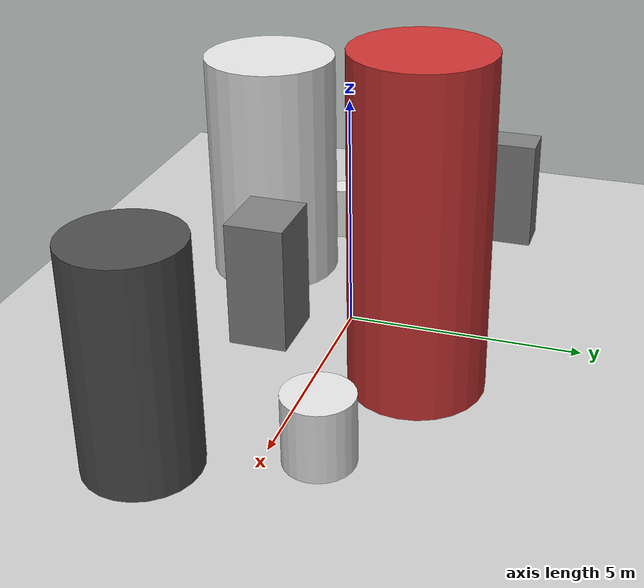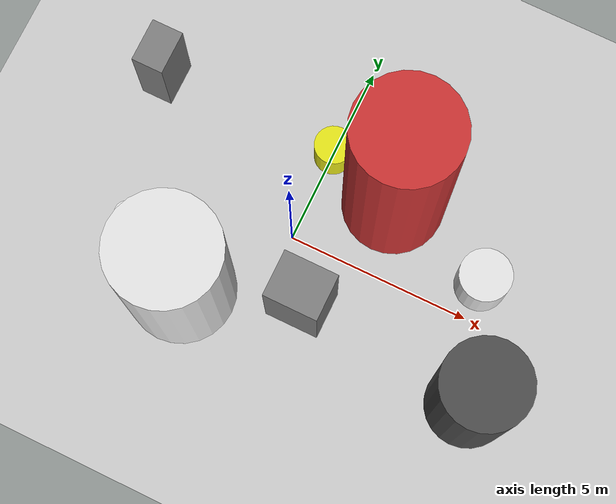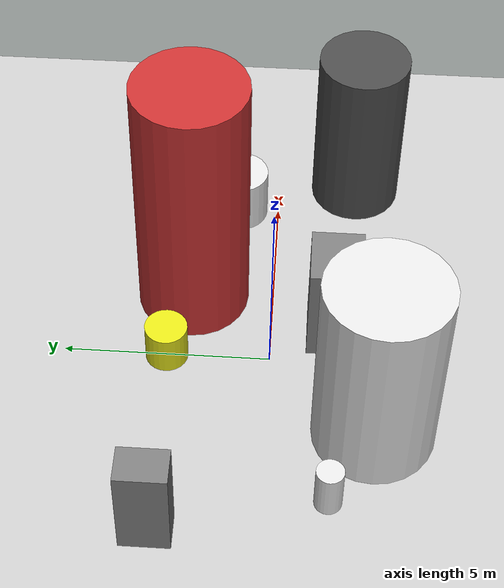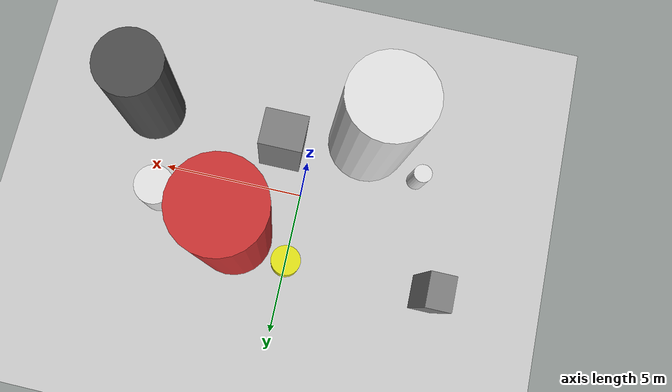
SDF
<?xml version='1.0'?>
<sdf version='1.6'>
  <world name='routeA_rl_v1__support_expansion__rl_val__mixed_3d_low_density_route__000161'>
    <!-- Sun light -->
    <light name='sun' type='directional'>
      <cast_shadows>1</cast_shadows>
      <pose>0 0 10 0 0 0</pose>
      <diffuse>0.8 0.8 0.8 1</diffuse>
      <specular>0.2 0.2 0.2 1</specular>
      <attenuation>
        <range>1000</range>
        <constant>0.9</constant>
        <linear>0.01</linear>
        <quadratic>0.001</quadratic>
      </attenuation>
      <direction>-0.5 0.1 -0.9</direction>
    </light>

    <!-- Ground plane -->
    <model name='ground_plane'>
      <static>1</static>
      <link name='link'>
        <collision name='collision'>
          <geometry>
            <plane>
              <normal>0 0 1</normal>
              <size>100 100</size>
            </plane>
          </geometry>
          <surface>
            <contact>
              <collide_bitmask>65535</collide_bitmask>
              <ode/>
            </contact>
            <friction>
              <ode>
                <mu>100</mu>
                <mu2>50</mu2>
              </ode>
              <torsional><ode/></torsional>
            </friction>
            <bounce/>
          </surface>
          <max_contacts>10</max_contacts>
        </collision>
        <visual name='visual'>
          <cast_shadows>0</cast_shadows>
          <geometry>
            <plane>
              <normal>0 0 1</normal>
              <size>100 100</size>
            </plane>
          </geometry>
          <material>
            <script>
              <uri>file://media/materials/scripts/gazebo.material</uri>
              <n>Gazebo/Grey</n>
            </script>
          </material>
        </visual>
      </link>
    </model>

    <!-- Environment -->
    <magnetic_field>6e-06 2.3e-05 -4.2e-05</magnetic_field>
    <atmosphere type='adiabatic'/>
    <physics name='default_physics' default='0' type='ode'>
      <gravity>0 0 -9.8</gravity>
      <max_step_size>0.004</max_step_size>
      <real_time_factor>1</real_time_factor>
      <real_time_update_rate>250</real_time_update_rate>
    </physics>
    <scene>
      <ambient>0.4 0.4 0.4 1</ambient>
      <background>0.7 0.7 0.7 1</background>
      <shadows>1</shadows>
    </scene>
    <wind/>
    <spherical_coordinates>
      <surface_model>EARTH_WGS84</surface_model>
      <latitude_deg>0</latitude_deg>
      <longitude_deg>0</longitude_deg>
      <elevation>0</elevation>
      <heading_deg>0</heading_deg>
    </spherical_coordinates>

    <!-- ============ OBSTACLES (8) ============ -->
    <model name='low_obs_0'>
      <static>1</static>
      <link name='link'>
        <visual name='visual'>
          <geometry>
            <cylinder>
              <radius>0.3243</radius>
              <length>1.2263</length>
            </cylinder>
          </geometry>
          <material>
            <script>
              <n>Gazebo/White</n>
              <uri>file://media/materials/scripts/gazebo.material</uri>
            </script>
            <ambient>0.9 0.9 0.9 1</ambient>
          </material>
        </visual>
        <collision name='collision'>
          <geometry>
            <cylinder>
              <radius>0.3243</radius>
              <length>1.2263</length>
            </cylinder>
          </geometry>
          <max_contacts>10</max_contacts>
          <surface>
            <contact><ode/></contact>
            <bounce/>
            <friction>
              <ode><mu>1</mu><mu2>1</mu2></ode>
              <torsional><ode/></torsional>
            </friction>
          </surface>
        </collision>
      </link>
      <pose>-4.0000 -1.5000 0.6131 0 0 0.0000</pose>
    </model>

    <model name='low_obs_1'>
      <static>1</static>
      <link name='link'>
        <visual name='visual'>
          <geometry>
            <cylinder>
              <radius>0.5177</radius>
              <length>1.0553</length>
            </cylinder>
          </geometry>
          <material>
            <script>
              <n>Gazebo/Yellow</n>
              <uri>file://media/materials/scripts/gazebo.material</uri>
            </script>
            <ambient>0.9 0.9 0.1 1</ambient>
          </material>
        </visual>
        <collision name='collision'>
          <geometry>
            <cylinder>
              <radius>0.5177</radius>
              <length>1.0553</length>
            </cylinder>
          </geometry>
          <max_contacts>10</max_contacts>
          <surface>
            <contact><ode/></contact>
            <bounce/>
            <friction>
              <ode><mu>1</mu><mu2>1</mu2></ode>
              <torsional><ode/></torsional>
            </friction>
          </surface>
        </collision>
      </link>
      <pose>0.0000 2.5000 0.5276 0 0 0.0000</pose>
    </model>

    <model name='low_obs_2'>
      <static>1</static>
      <link name='link'>
        <visual name='visual'>
          <geometry>
            <cylinder>
              <radius>0.6987</radius>
              <length>1.4284</length>
            </cylinder>
          </geometry>
          <material>
            <script>
              <n>Gazebo/White</n>
              <uri>file://media/materials/scripts/gazebo.material</uri>
            </script>
            <ambient>0.9 0.9 0.9 1</ambient>
          </material>
        </visual>
        <collision name='collision'>
          <geometry>
            <cylinder>
              <radius>0.6987</radius>
              <length>1.4284</length>
            </cylinder>
          </geometry>
          <max_contacts>10</max_contacts>
          <surface>
            <contact><ode/></contact>
            <bounce/>
            <friction>
              <ode><mu>1</mu><mu2>1</mu2></ode>
              <torsional><ode/></torsional>
            </friction>
          </surface>
        </collision>
      </link>
      <pose>5.0000 1.0000 0.7142 0 0 0.0000</pose>
    </model>

    <model name='tall_obs_0'>
      <static>1</static>
      <link name='link'>
        <visual name='visual'>
          <geometry>
            <cylinder>
              <radius>1.4491</radius>
              <length>5.1009</length>
            </cylinder>
          </geometry>
          <material>
            <script>
              <n>Gazebo/White</n>
              <uri>file://media/materials/scripts/gazebo.material</uri>
            </script>
            <ambient>0.9 0.9 0.9 1</ambient>
          </material>
        </visual>
        <collision name='collision'>
          <geometry>
            <cylinder>
              <radius>1.4491</radius>
              <length>5.1009</length>
            </cylinder>
          </geometry>
          <max_contacts>10</max_contacts>
          <surface>
            <contact><ode/></contact>
            <bounce/>
            <friction>
              <ode><mu>1</mu><mu2>1</mu2></ode>
              <torsional><ode/></torsional>
            </friction>
          </surface>
        </collision>
      </link>
      <pose>-2.0000 -2.5000 2.5504 0 0 0.0000</pose>
    </model>

    <model name='tall_obs_1'>
      <static>1</static>
      <link name='link'>
        <visual name='visual'>
          <geometry>
            <cylinder>
              <radius>1.3739</radius>
              <length>6.8688</length>
            </cylinder>
          </geometry>
          <material>
            <script>
              <n>Gazebo/Red</n>
              <uri>file://media/materials/scripts/gazebo.material</uri>
            </script>
            <ambient>0.8 0.2 0.2 1</ambient>
          </material>
        </visual>
        <collision name='collision'>
          <geometry>
            <cylinder>
              <radius>1.3739</radius>
              <length>6.8688</length>
            </cylinder>
          </geometry>
          <max_contacts>10</max_contacts>
          <surface>
            <contact><ode/></contact>
            <bounce/>
            <friction>
              <ode><mu>1</mu><mu2>1</mu2></ode>
              <torsional><ode/></torsional>
            </friction>
          </surface>
        </collision>
      </link>
      <pose>2.0000 2.0000 3.4344 0 0 0.0000</pose>
    </model>

    <model name='tall_obs_2'>
      <static>1</static>
      <link name='link'>
        <visual name='visual'>
          <geometry>
            <cylinder>
              <radius>1.1331</radius>
              <length>4.5142</length>
            </cylinder>
          </geometry>
          <material>
            <script>
              <n>Gazebo/DarkGrey</n>
              <uri>file://media/materials/scripts/gazebo.material</uri>
            </script>
            <ambient>0.3 0.3 0.3 1</ambient>
          </material>
        </visual>
        <collision name='collision'>
          <geometry>
            <cylinder>
              <radius>1.1331</radius>
              <length>4.5142</length>
            </cylinder>
          </geometry>
          <max_contacts>10</max_contacts>
          <surface>
            <contact><ode/></contact>
            <bounce/>
            <friction>
              <ode><mu>1</mu><mu2>1</mu2></ode>
              <torsional><ode/></torsional>
            </friction>
          </surface>
        </collision>
      </link>
      <pose>6.0000 -2.0000 2.2571 0 0 0.0000</pose>
    </model>

    <model name='med_obs_0'>
      <static>1</static>
      <link name='link'>
        <visual name='visual'>
          <geometry>
            <box>
              <size>0.8579 1.1815 2.5465</size>
            </box>
          </geometry>
          <material>
            <script>
              <n>Gazebo/Grey</n>
              <uri>file://media/materials/scripts/gazebo.material</uri>
            </script>
            <ambient>0.5 0.5 0.5 1</ambient>
          </material>
        </visual>
        <collision name='collision'>
          <geometry>
            <box>
              <size>0.8579 1.1815 2.5465</size>
            </box>
          </geometry>
          <max_contacts>10</max_contacts>
          <surface>
            <contact><ode/></contact>
            <bounce/>
            <friction>
              <ode><mu>1</mu><mu2>1</mu2></ode>
              <torsional><ode/></torsional>
            </friction>
          </surface>
        </collision>
      </link>
      <pose>-5.0000 2.5000 1.2733 0 0 0.0000</pose>
    </model>

    <model name='med_obs_1'>
      <static>1</static>
      <link name='link'>
        <visual name='visual'>
          <geometry>
            <box>
              <size>1.4802 1.2570 2.7448</size>
            </box>
          </geometry>
          <material>
            <script>
              <n>Gazebo/Grey</n>
              <uri>file://media/materials/scripts/gazebo.material</uri>
            </script>
            <ambient>0.5 0.5 0.5 1</ambient>
          </material>
        </visual>
        <collision name='collision'>
          <geometry>
            <box>
              <size>1.4802 1.2570 2.7448</size>
            </box>
          </geometry>
          <max_contacts>10</max_contacts>
          <surface>
            <contact><ode/></contact>
            <bounce/>
            <friction>
              <ode><mu>1</mu><mu2>1</mu2></ode>
              <torsional><ode/></torsional>
            </friction>
          </surface>
        </collision>
      </link>
      <pose>1.0000 -1.5000 1.3724 0 0 0.0000</pose>
    </model>

    <!-- GUI camera -->
    <gui fullscreen='0'>
      <camera name='user_camera'>
        <pose>-15 0 18 0 0.85 0.15</pose>
        <view_controller>orbit</view_controller>
        <projection_type>perspective</projection_type>
      </camera>
    </gui>
  </world>
</sdf>
